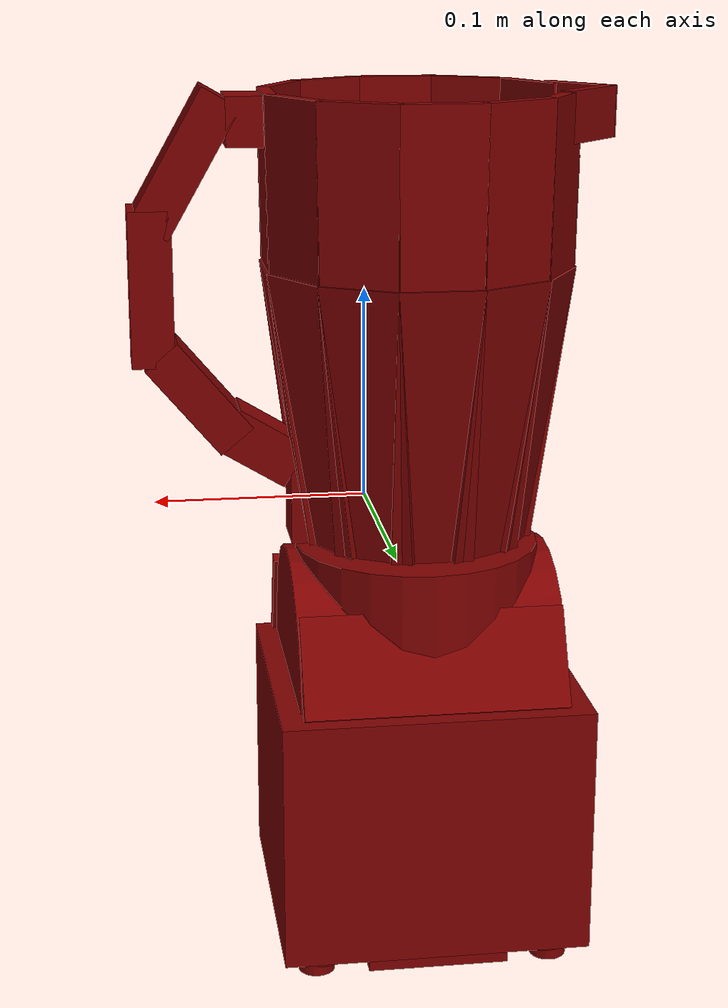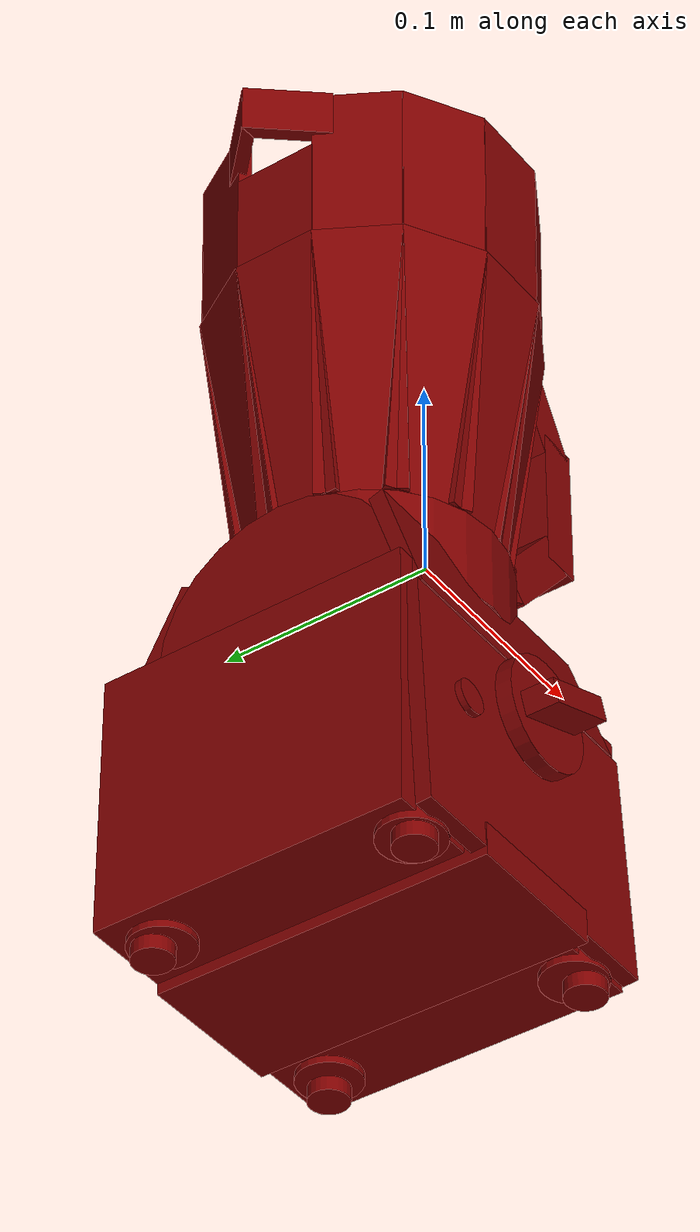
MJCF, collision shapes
<?xml version='1.0' encoding='UTF-8'?>
<mujoco model="model">
  <option timestep="0.002" gravity="0.0 0.0 -9.81"/>
  <compiler angle="radian"/>
  <asset>
    <mesh file="visuals/blade.obj" name="blade_vis"/>
    <mesh file="visuals/Body001.obj" name="Body001_vis"/>
    <mesh file="visuals/power_button.obj" name="power_button_vis"/>
    <mesh file="visuals/pitcher.obj" name="pitcher_vis"/>
    <mesh file="visuals/pitcher_main.obj" name="pitcher_main_vis"/>
    <mesh file="visuals/knob_speed.obj" name="knob_speed_vis"/>
    <texture file="visuals/T_BC001.png" name="Body001_material" type="2d"/>
    <material name="Body001_material" rgba="1 1 1 1.0" texture="Body001_material" shininess="0.4472135901451111" specular="1"/>
    <texture file="visuals/T_BC001.png" name="power_button_material" type="2d"/>
    <material name="power_button_material" rgba="1 1 1 1.0" texture="power_button_material" shininess="0.4472135901451111" specular="1"/>
    <texture file="visuals/T_BC001.png" name="pitcher_material" type="2d"/>
    <material name="pitcher_material" rgba="1 1 1 1.0" texture="pitcher_material" shininess="0.4472135901451111" specular="1"/>
    <texture file="visuals/T_BC001.png" name="blade_material" type="2d"/>
    <material name="blade_material" rgba="1 1 1 1.0" texture="blade_material" shininess="0.4472135901451111" specular="2"/>
    <texture file="visuals/T_BC001.png" name="pitcher_main_material" type="2d"/>
    <material name="pitcher_main_material" rgba="1 1 1 0.75" texture="pitcher_main_material" shininess="0.4472135901451111" specular="0.3103448502657381"/>
    <texture file="visuals/T_BC001.png" name="knob_speed_material" type="2d"/>
    <material name="knob_speed_material" rgba="1 1 1 1.0" texture="knob_speed_material" shininess="0.4472135901451111" specular="1"/>
  </asset>
  <default>
    <default class="visual">
      <geom conaffinity="0" contype="0" group="1" type="mesh"/>
    </default>
    <default class="collision">
      <geom group="0" rgba="0.5 0 0 0.5" density="1.0" solref="0.004 1" solimp="0.998 0.998 0.001"/>
    </default>
    <default class="spawn">
      <geom group="0" rgba="1 1 1 0.5" contype="0" conaffinity="0"/>
      <site group="0" rgba="1 1 1 0.5"/>
    </default>
    <default class="region">
      <geom group="1" conaffinity="0" contype="0" rgba="0 1 0 0" mass="0"/>
    </default>
  </default>
  <worldbody>
    <body>
      <body name="object">
        <geom mesh="Body001_vis" type="mesh" solimp="0.998 0.998 0.001" solref="0.001 1" friction="0.95 0.3 0.1" class="visual" material="Body001_material"/>
        <geom type="box" pos="-0.02370600774884224 0.01575588434934616 -0.14391756057739258" size="0.0726303681731224 0.06995470076799393 0.05990836024284363" quat="1.0 0.0 0.0 0.0" class="collision"/>
        <geom type="box" pos="-0.02370600774884224 0.010671110823750496 -0.20127084851264954" size="0.03310617431998253 0.07492336630821228 0.0074357446283102036" quat="1.0 0.0 0.0 0.0" class="collision"/>
        <geom type="cylinder" pos="-0.023498959839344025 0.010333314538002014 -0.0399225689470768" size="0.05790601298213005 0.02009253390133381" quat="1.0 0.0 0.0 0.0" class="collision"/>
        <geom type="cylinder" pos="-0.023498957976698875 0.011205630376935005 -0.07904822379350662" size="0.05638286471366882 0.062419041991233826" quat="0.70710688829422 -4.750302551315144e-08 0.7071066498756409 4.750301130229673e-08" class="collision"/>
        <geom type="cylinder" pos="-0.07721934467554092 -0.04520033672451973 -0.19629321992397308" size="0.013792860321700573 0.010646238923072815" quat="1.0 0.0 0.0 0.0" class="collision"/>
        <geom type="cylinder" pos="-0.07721934467554092 0.06782449781894684 -0.19629321992397308" size="0.013792860321700573 0.010646238923072815" quat="1.0 0.0 0.0 0.0" class="collision"/>
        <geom type="cylinder" pos="0.029445447027683258 -0.04520033672451973 -0.19629321992397308" size="0.013792860321700573 0.010646238923072815" quat="1.0 0.0 0.0 0.0" class="collision"/>
        <geom type="cylinder" pos="0.029445447027683258 0.06782449781894684 -0.19629321992397308" size="0.013792860321700573 0.010646238923072815" quat="1.0 0.0 0.0 0.0" class="collision"/>
        <geom type="cylinder" pos="-0.0794193297624588 -0.04801643639802933 -0.21001145243644714" size="0.008686801418662071 0.0032839258201420307" quat="1.0 0.0 0.0 0.0" class="collision"/>
        <geom type="cylinder" pos="-0.0794193297624588 0.07029403001070023 -0.21001145243644714" size="0.008686801418662071 0.0032839258201420307" quat="1.0 0.0 0.0 0.0" class="collision"/>
        <geom type="cylinder" pos="0.03260059654712677 -0.04801643639802933 -0.21001145243644714" size="0.008686801418662071 0.0032839258201420307" quat="1.0 0.0 0.0 0.0" class="collision"/>
        <geom type="cylinder" pos="0.03260059654712677 0.07029403001070023 -0.21001145243644714" size="0.008686801418662071 0.0032839258201420307" quat="1.0 0.0 0.0 0.0" class="collision"/>
        <geom type="box" pos="-0.02370600774884224 -0.058004483580589294 -0.15166433155536652" size="0.0682840496301651 0.0034519981127232313 0.053407784551382065" quat="7.54755831167131e-08 1.835457008603214e-09 0.9997044205665588 -0.02431136555969715" class="collision"/>
        <geom type="box" pos="-0.02370600774884224 -0.04635697975754738 -0.07046926766633987" size="0.06457599997520447 0.0034519978798925877 0.02906602807343006" quat="7.45433581528232e-08 1.1967471458262935e-08 0.9873567223548889 -0.15851396322250366" class="collision"/>
        <geom type="box" pos="-0.023520391434431076 0.0659138560295105 -0.06285583227872849" size="0.06164168566465378 0.0037966493982821703 0.02382502518594265" quat="0.9702504277229309 0.24210351705551147 0.0 0.0" class="collision"/>
        <body name="power_button">
          <joint axis="-8.449515540379638e-19 0.9961947202682495 -0.08715573698282242" pos="-0.06635891646146774 -0.06385333836078644 -0.1425868272781372" limited="true" name="power_button_joint" range="0.0 0.0015" type="slide" damping="1" frictionloss="1" armature=".01" stiffness="0.1" springref="-0.1"/>
          <geom mesh="power_button_vis" type="mesh" solimp="0.998 0.998 0.001" solref="0.001 1" friction="0.95 0.3 0.1" class="visual" material="power_button_material"/>
          <geom class="collision" type="cylinder" pos="-0.06655253469944 -0.06422373652458191 -0.14217321574687958" size="0.007525994908064604 0.0013521818909794092" quat="0.7372773885726929 0.6755901575088501 -1.6078366169891328e-16 -1.523387564496777e-16" name="power_button_main"/>
        </body>
        <body name="pitcher">
          <geom mesh="pitcher_vis" type="mesh" solimp="0.998 0.998 0.001" solref="0.001 1" friction="0.95 0.3 0.1" class="visual" material="pitcher_material"/>
          <geom type="cylinder" pos="-0.02371910959482193 0.011068562977015972 -0.011649996042251587" size="0.02007598802447319 0.007151107303798199" quat="1.0 0.0 0.0 0.0" class="collision"/>
          <geom type="cylinder" pos="-0.02371910959482193 0.011068563908338547 0.0016762830782681704" size="0.01112541276961565 0.007151929661631584" quat="1.0 0.0 0.0 0.0" class="collision"/>
          <geom class="collision" type="box" pos="0.09918984770774841 0.010972322896122932 0.10551890730857849" size="0.009761814959347248 0.01324785128235817 0.03547469154000282" quat="1.0 0.0 0.0 0.0" name="pitcher_handle_2"/>
          <geom class="collision" type="box" pos="0.05492480471730232 0.010972313582897186 0.17936070263385773" size="0.009761814959347248 0.01324781496077776 0.01113841775804758" quat="1.0 0.0 0.0 0.0" name="pitcher_handle_4"/>
          <geom class="collision" type="box" pos="0.0828954428434372 0.010972315445542336 0.1612357199192047" size="0.009761814028024673 0.01324781496077776 0.03325482830405235" quat="0.966143786907196 2.69347604556745e-15 -0.25800421833992004 -3.4665141868117644e-08" name="pitcher_handle_3"/>
          <geom class="collision" type="box" pos="0.07884078472852707 0.01097233034670353 0.054684676229953766" size="0.009761815890669823 0.01324781496077776 0.026281777769327164" quat="0.9396926164627075 -6.4034441438827906e-15 0.3420201241970062 4.59534597041511e-08" name="pitcher_handle_1"/>
          <geom class="collision" type="box" pos="0.050518956035375595 0.010972334071993828 0.03077288344502449" size="0.0108710415661335 0.01324781496077776 0.018037976697087288" quat="0.8716132044792175 -1.8901147194692186e-14 0.4901942312717438 6.586184753132329e-08" name="pitcher_handle_0"/>
          <geom type="box" pos="0.03289134055376053 0.010972335934638977 0.007667149417102337" size="0.004690803121775389 0.01324781496077776 0.023297293111681938" quat="1.0 0.0 0.0 0.0" class="collision"/>
          <body name="blade">
            <geom mesh="blade_vis" type="mesh" solimp="0.998 0.998 0.001" solref="0.001 1" friction="0.95 0.3 0.1" class="visual" material="blade_material"/>
            <geom type="box" pos="-0.023458171635866165 0.010972345247864723 0.014321236871182919" size="0.00963058602064848 0.00569922337308526 0.0008714227005839348" quat="1.0 0.0 0.0 0.0" class="collision"/>
            <geom type="box" pos="-0.0053266193717718124 0.010972345247864723 0.0070035699754953384" size="0.011695402674376965 0.0039033922366797924 0.0008714226423762739" quat="0.9396926164627075 -8.309776071456845e-15 0.342020183801651 4.595345615143742e-08" class="collision"/>
            <geom type="box" pos="-0.041705138981342316 0.010972345247864723 0.0070035699754953384" size="0.011695402674376965 0.0039033922366797924 0.0008714226423762739" quat="0.9396926164627075 -7.229702337556258e-15 -0.342020183801651 -4.59534099661596e-08" class="collision"/>
            <geom type="box" pos="-0.023458171635866165 0.010972345247864723 0.015489095821976662" size="0.0034575453028082848 0.0056992084719240665 0.00036451281630434096" quat="1.0 0.0 0.0 0.0" class="collision"/>
            <geom type="box" pos="-0.023458171635866165 0.000928766094148159 0.02140624076128006" size="0.0034575453028082848 0.008669809438288212 0.00036451281630434096" quat="0.919166088104248 -0.39387020468711853 -8.745675399149245e-17 -5.160514655080997e-24" class="collision"/>
            <geom type="box" pos="-0.023458171635866165 0.02114049345254898 0.02140624076128006" size="0.0034575453028082848 0.008669809438288212 0.00036451275809668005" quat="0.4017453193664551 -0.9157514572143555 -2.0333765729179347e-16 1.967528118198305e-23" class="collision"/>
          </body>
          <body name="pitcher_main">
            <geom class="region" type="cylinder" size="0.051500000059604645 0.0732329934835434" pos="-0.023453088477253914 0.010936793871223927 0.1015644520521164" rgba="0 0 1 0.5" name="reg_int"/>
            <geom mesh="pitcher_main_vis" type="mesh" solimp="0.998 0.998 0.001" solref="0.001 1" friction="0.95 0.3 0.1" class="visual" material="pitcher_main_material"/>
            <geom type="box" pos="-0.081379733979702 0.010130036622285843 0.049280185252428055" size="0.0029590476769953966 0.01903216540813446 0.06470920145511627" quat="0.9974465370178223 -1.1931020221404376e-15 -0.07141713798046112 -9.595525263250693e-09" class="collision"/>
            <geom type="box" pos="-0.0976974368095398 0.02441496029496193 0.18065233528614044" size="0.0029584099538624287 0.019032161682844162 0.011675574816763401" quat="0.9238548874855042 -0.0027946368791162968 -0.006746850907802582 -0.3826732039451599" class="collision"/>
            <geom type="box" pos="-0.09015580266714096 0.010130021721124649 0.13765649497509003" size="0.002958660013973713 0.019032161682844162 0.02560451254248619" quat="0.9999733567237854 -2.5554136985714987e-16 -0.007302739657461643 -9.811875756327026e-10" class="collision"/>
            <geom type="box" pos="-0.07352063804864883 -0.019200507551431656 0.049280185252428055" size="0.002959047444164753 0.01903216540813446 0.06470920145511627" quat="0.9634593725204468 0.018484115600585938 -0.06898367404937744 0.2581581175327301" class="collision"/>
            <geom type="box" pos="-0.08112091571092606 -0.023588556796312332 0.15112878382205963" size="0.0029588767793029547 0.019032159820199013 0.04057501256465912" quat="0.9659000635147095 0.0018900875002145767 -0.007053904235363007 0.25881218910217285" class="collision"/>
            <geom type="box" pos="-0.0520491823554039 -0.04067195579409599 0.049280185252428055" size="0.0029590476769953966 0.01903216540813446 0.06470920145511627" quat="0.8638140559196472 0.03570856153964996 -0.06184906139969826 0.49872323870658875" class="collision"/>
            <geom type="box" pos="-0.05643719807267189 -0.0482722632586956 0.15112878382205963" size="0.0029588770121335983 0.01903216354548931 0.04057501256465912" quat="0.8660022616386414 0.0036513686645776033 -0.006324354093521833 0.4999867379665375" class="collision"/>
            <geom type="box" pos="-0.022718632593750954 -0.048531051725149155 0.049280185252428055" size="0.0029590476769953966 0.01903216540813446 0.06470920145511627" quat="0.7053011655807495 0.050499554723501205 -0.05049955099821091 0.7053012847900391" class="collision"/>
            <geom type="box" pos="-0.022718612104654312 -0.05730711668729782 0.15112878382205963" size="0.0029588770121335983 0.019032161682844162 0.04057501256465912" quat="0.7070879340171814 0.0051638162694871426 -0.005163814406841993 0.7070879340171814" class="collision"/>
            <geom type="box" pos="0.006611908320337534 -0.04067195951938629 0.049280185252428055" size="0.0029590476769953966 0.01903216540813446 0.06470920145511627" quat="0.4987233579158783 0.061849042773246765 -0.03570856153964996 0.8638139963150024" class="collision"/>
            <geom type="box" pos="0.010999966412782669 -0.048272233456373215 0.15112878382205963" size="0.0029588770121335983 0.019032161682844162 0.04057501256465912" quat="0.4999866485595703 0.006324364338070154 -0.0036513707600533962 0.8660023212432861" class="collision"/>
            <geom type="box" pos="0.028083357959985733 -0.01920049823820591 0.049280185252428055" size="0.0029590476769953966 0.01903216540813446 0.06470920145511627" quat="0.2581581771373749 0.06898364424705505 -0.01848411187529564 0.9634593725204468" class="collision"/>
            <geom type="box" pos="0.035683661699295044 -0.023588523268699646 0.15112878382205963" size="0.0029588770121335983 0.019032161682844162 0.04057501256465912" quat="0.25881215929985046 0.007053910288959742 -0.0018900894792750478 0.9659000635147095" class="collision"/>
            <geom type="box" pos="0.03594245761632919 0.010130045004189014 0.049280185252428055" size="0.0029590476769953966 0.01903216540813446 0.06470920145511627" quat="7.525567013999535e-08 0.07141713798046112 -4.701265154949397e-09 0.9974465370178223" class="collision"/>
            <geom type="box" pos="0.04471852630376816 0.010130072943866253 0.15112878382205963" size="0.0029588770121335983 0.019032161682844162 0.04057501256465912" quat="7.549594016609262e-08 -0.007302730809897184 -5.585061857438234e-10 -0.9999733567237854" class="collision"/>
            <geom type="box" pos="0.02808336168527603 0.039460599422454834 0.049280185252428055" size="0.0029590476769953966 0.01903216540813446 0.06470920145511627" quat="0.2581581771373749 -0.06898365169763565 -0.018484117463231087 -0.9634593725204468" class="collision"/>
            <geom type="box" pos="0.035683635622262955 0.04384865611791611 0.15112878382205963" size="0.0029588770121335983 0.019032161682844162 0.04057501256465912" quat="0.25881227850914 -0.0070538888685405254 -0.0018900844734162092 -0.9659000039100647" class="collision"/>
            <geom type="box" pos="0.0066118971444666386 0.06093205511569977 0.049280185252428055" size="0.0029590476769953966 0.01903216540813446 0.06470920145511627" quat="0.4987233579158783 -0.06184905394911766 -0.03570856899023056 -0.8638139963150024" class="collision"/>
            <geom type="box" pos="0.010999917984008789 0.06853236258029938 0.15112878382205963" size="0.0029588770121335983 0.019032161682844162 0.04057501256465912" quat="0.4999867379665375 -0.006324357818812132 -0.003651369595900178 -0.8660022616386414" class="collision"/>
            <geom type="box" pos="-0.022718647494912148 0.06879114359617233 0.049280185252428055" size="0.0029590476769953966 0.01903216540813446 0.06470920145511627" quat="0.7053011655807495 -0.05049954727292061 -0.05049953982234001 -0.7053012847900391" class="collision"/>
            <geom type="box" pos="-0.02271866239607334 0.0775672122836113 0.15112878382205963" size="0.0029588770121335983 0.019032161682844162 0.04057501256465912" quat="0.7070879340171814 -0.005163815338164568 -0.005163813941180706 -0.7070879340171814" class="collision"/>
            <geom type="box" pos="-0.05204921215772629 0.06093202531337738 0.049280185252428055" size="0.002959047444164753 0.01903216727077961 0.06470920145511627" quat="0.8638140559196472 -0.03570856153964996 -0.061849068850278854 -0.49872323870658875" class="collision"/>
            <geom type="box" pos="-0.056437261402606964 0.0685323104262352 0.15112878382205963" size="0.0029588770121335983 0.01903216354548931 0.04057501256465912" quat="0.8660024404525757 -0.0036513670347630978 -0.006324354559183121 -0.499986469745636" class="collision"/>
            <geom type="box" pos="-0.07352064549922943 0.039460569620132446 0.049280185252428055" size="0.002959047444164753 0.01903216540813446 0.06470920145511627" quat="0.9634594321250916 -0.018484100699424744 -0.06898365169763565 -0.25815802812576294" class="collision"/>
            <geom type="box" pos="-0.08112095296382904 0.043848585337400436 0.15112878382205963" size="0.0029588767793029547 0.019032161682844162 0.04057501256465912" quat="0.9659001231193542 -0.0018900863360613585 -0.007053903304040432 -0.2588120102882385" class="collision"/>
            <geom type="box" pos="-0.09945792704820633 -0.0003995802253484726 0.18065233528614044" size="0.002958409721031785 0.019032161682844162 0.011675574816763401" quat="0.9396675825119019 0.002497683744877577 -0.006862326990813017 0.342011034488678" class="collision"/>
          </body>
        </body>
        <body name="knob_speed">
          <joint axis="0.0 1.0 0.0" pos="-0.023714657872915268 -0.07196100056171417 -0.12436006218194962" limited="true" name="knob_speed_joint" range="0.0 4.1887902047863905" type="hinge" damping="0.05" frictionloss="0.1" armature="0.001"/>
          <geom mesh="knob_speed_vis" type="mesh" solimp="0.998 0.998 0.001" solref="0.001 1" friction="0.95 0.3 0.1" class="visual" material="knob_speed_material"/>
          <geom type="cylinder" pos="-0.02371465601027012 -0.06738296896219254 -0.12436006218194962" size="0.02472747676074505 0.0035679927095770836" quat="0.7071068286895752 0.7071067690849304 -1.63459346135061e-16 2.2978035169151292e-17" class="collision" density="0.001"/>
          <geom class="collision" type="box" pos="-0.02371465601027012 -0.07684306800365448 -0.12436006218194962" size="0.005093937274068594 0.008838259615004063 0.017926625907421112" quat="0.5656280517578125 2.162504082867025e-14 -0.8246604800224304 -1.1080038575528306e-07" name="knob_speed_main" density="0.001"/>
        </body>
        <geom class="region" name="reg_main" type="box" pos="-0.02172207646071911 0.010653667151927948 0.0" size="0.09036356008052826 0.0765433738231659 0.21434168314933777"/>
      </body>
      <site rgba="0 1 0 0" size="0.005" pos="-0.0185759 0.01097328 0.19138097" name="anchor_site"/>
    </body>
  </worldbody>
  <actuator>
    <motor name="power_button_joint_actuator" joint="power_button_joint" gear="0.5"/>
    <motor name="knob_speed_joint_actuator" joint="knob_speed_joint" gear="10"/>
  </actuator>
</mujoco>
